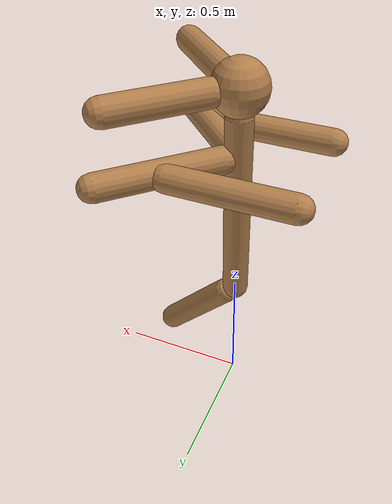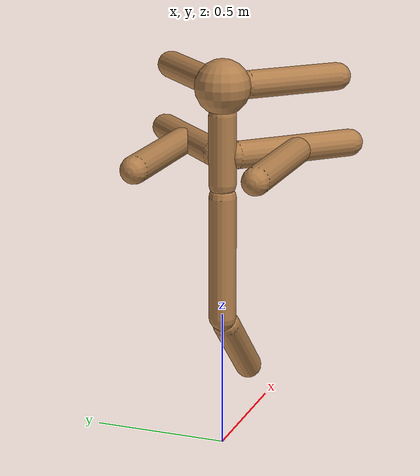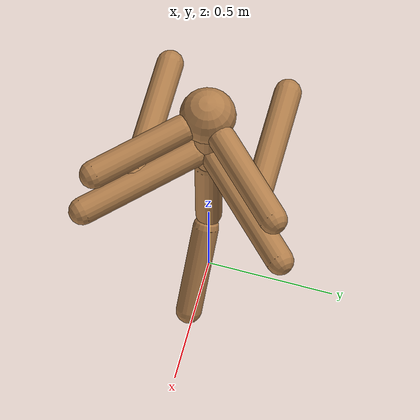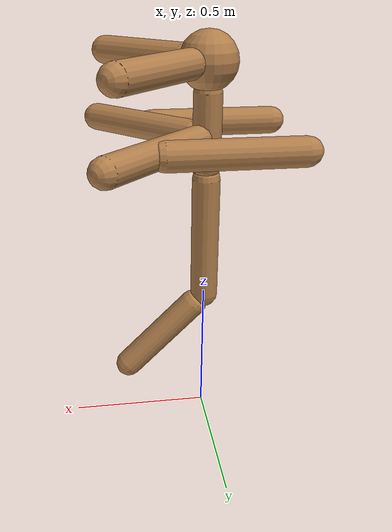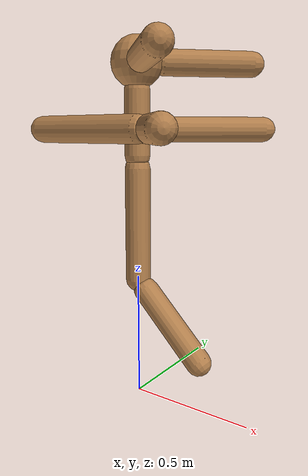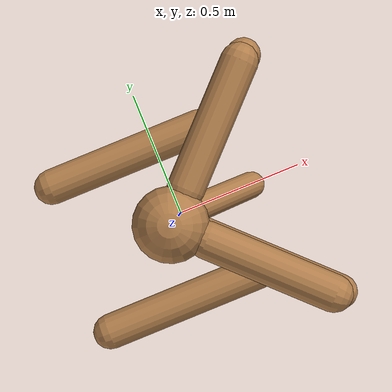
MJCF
<?xml version='1.0' encoding='UTF-8'?>
<!-- Universal Animal Template: unimal -->
<mujoco model="unimal">
  <compiler angle="degree"/>
  <size njmax="2000" nconmax="500"/>
  <option timestep=".005">
    <flag filterparent="disable"/>
  </option>
  <!-- Common defaults to make search space tractable -->
  <default>
    <!-- Define motor defaults -->
    <motor ctrlrange="-1 1" ctrllimited="true"/>
    <!-- Define joint defaults -->
    <default class="normal_joint">
      <joint type="hinge" damping="1" stiffness="1" armature="1" limited="true" range="-120 120" solimplimit="0 0.99 0.01"/>
    </default>
    <default class="walker_joint">
      <joint type="hinge" damping="0.2" stiffness="1" armature=".01" limited="true" range="-120 120" solimplimit="0 0.99 0.01"/>
    </default>
    <default class="stiff_joint">
      <joint type="hinge" damping="5" stiffness="10" armature=".01" limited="true" solimplimit="0 0.99 0.01"/>
    </default>
    <default class="free">
      <joint limited="false" damping="0" armature="0" stiffness="0"/>
    </default>
    <default class="growth_site">
      <site size="1e-6 1e-6 1e-6"/>
    </default>
    <default class="torso_growth_site">
      <site size="1e-6 1e-6 1e-6"/>
    </default>
    <default class="mirror_growth_site">
      <site size="1e-6 1e-6 1e-6"/>
    </default>
    <default class="btm_pos_site">
      <site size="1e-6 1e-6 1e-6"/>
    </default>
    <default class="box_face_site">
      <site size="1e-6 1e-6 1e-6"/>
    </default>
    <default class="imu_vel">
      <site type="box" size="0.05" rgba="1 0 0 0"/>
    </default>
    <default class="touch_site">
      <site group="3" rgba="0 0 1 .3"/>
    </default>
    <default class="food_site">
      <site material="food" size="0.15"/>
    </default>
    <!-- Define geom defaults -->
    <geom type="capsule" condim="3" friction="0.7 0.1 0.1" material="self"/>
  </default>
  <worldbody>
    <light diffuse="1 1 1" directional="true" exponent="1" pos="0 0 8" specular="0.1 0.1 0.1" dir="0 0 -1"/>
    <!-- Programatically generated xml goes here -->
    <body name="torso/0" pos="0 0 1.34">
      <joint name="root" type="free" class="free"/>
      <site name="root" class="imu_vel"/>
      <geom name="torso/0" type="sphere" size="0.1" condim="3" density="1000"/>
      <camera name="side" pos="0 -7 2" xyaxes="1 0 0 0 1 2" mode="trackcom"/>
      <site name="torso/0" class="growth_site" pos="0 0 0"/>
      <site name="torso/btm_pos/0" class="btm_pos_site" pos="0 0 -0.1"/>
      <site name="torso/touch/0" class="touch_site" size="0.11"/>
      <site name="torso/horizontal_y/0" class="torso_growth_site" pos="-0.1 0 0"/>
      <body name="limb/0" pos="0.0 0.0 -0.1">
        <joint name="limby/0" type="hinge" class="normal_joint" range="-45 45" pos="0.0 0.0 0.05" axis="0.0 1.0 0.0"/>
        <geom name="limb/0" type="capsule" fromto="0.0 0.0 0.0 0.0 0.0 -0.25" size="0.05" density="900"/>
        <site name="limb/mid/0" class="growth_site" pos="0.0 0.0 -0.15"/>
        <site name="limb/btm/0" class="growth_site" pos="0.0 0.0 -0.25"/>
        <site name="limb/btm_pos/0" class="btm_pos_site" pos="0.0 0.0 -0.25"/>
        <site name="limb/touch/0" class="touch_site" size="0.060000000000000005" fromto="0.0 0.0 0.0 0.0 0.0 -0.25" type="capsule"/>
        <body name="limb/1" pos="0.0 0.0 -0.3">
          <joint name="limbx/1" type="hinge" class="normal_joint" range="-30 0" pos="0.0 0.0 0.05" axis="1.0 0.0 0.0"/>
          <joint name="limby/1" type="hinge" class="normal_joint" range="0 90" pos="0.0 0.0 0.05" axis="0.0 1.0 0.0"/>
          <geom name="limb/1" type="capsule" fromto="0.0 0.0 0.0 0.0 0.0 -0.45" size="0.05" density="900"/>
          <site name="limb/mid/1" class="growth_site" pos="0.0 0.0 -0.25"/>
          <site name="limb/btm/1" class="growth_site" pos="0.0 0.0 -0.45"/>
          <site name="limb/btm_pos/1" class="btm_pos_site" pos="0.0 0.0 -0.45"/>
          <site name="limb/touch/1" class="touch_site" size="0.060000000000000005" fromto="0.0 0.0 0.0 0.0 0.0 -0.45" type="capsule"/>
          <body name="limb/6" pos="0.04 0.0 -0.49">
            <joint name="limbx/6" type="hinge" class="normal_joint" range="0 90" pos="-0.04 0.0 0.04" axis="0.7071 0.0 0.7071"/>
            <geom name="limb/6" type="capsule" fromto="0.0 0.0 0.0 0.25 0.0 -0.25" size="0.05" density="900"/>
            <site name="limb/mid/6" class="growth_site" pos="0.14 0.0 -0.14"/>
            <site name="limb/btm/6" class="growth_site" pos="0.25 0.0 -0.25"/>
            <site name="limb/btm_pos/6" class="btm_pos_site" pos="0.25 0.0 -0.25"/>
            <site name="limb/touch/6" class="touch_site" size="0.060000000000000005" fromto="0.0 0.0 0.0 0.25 0.0 -0.25" type="capsule"/>
          </body>
        </body>
        <body name="limb/13" pos="0.04 0.04 -0.15">
          <joint name="limbx/13" type="hinge" class="normal_joint" range="-60 0" pos="-0.04 -0.04 0.0" axis="0.5 -0.5 0.7071"/>
          <joint name="limby/13" type="hinge" class="normal_joint" range="-60 30" pos="-0.04 -0.04 0.0" axis="-0.5 0.5 0.7071"/>
          <geom name="limb/13" type="capsule" fromto="0.0 0.0 0.0 0.32 0.32 0.0" size="0.05" density="900"/>
          <site name="limb/mid/13" class="mirror_growth_site" pos="0.18 0.18 0.0"/>
          <site name="limb/btm/13" class="mirror_growth_site" pos="0.32 0.32 0.0"/>
          <site name="limb/btm_pos/13" class="btm_pos_site" pos="0.35 0.35 0.0"/>
          <site name="limb/touch/13" class="touch_site" size="0.060000000000000005" fromto="0.0 0.0 0.0 0.32 0.32 0.0" type="capsule"/>
          <body name="limb/15" pos="0.13 0.18 0.0">
            <joint name="limbx/15" type="hinge" class="normal_joint" range="-60 30" pos="0.05 0.0 0.0" axis="0.0 0.0 -1.0"/>
            <joint name="limby/15" type="hinge" class="normal_joint" range="-60 30" pos="0.05 0.0 0.0" axis="0.0 1.0 0.0"/>
            <geom name="limb/15" type="capsule" fromto="0.0 0.0 0.0 -0.45 0.0 0.0" size="0.05" density="900"/>
            <site name="limb/mid/15" class="mirror_growth_site" pos="-0.25 0.0 0.0"/>
            <site name="limb/btm/15" class="mirror_growth_site" pos="-0.45 0.0 0.0"/>
            <site name="limb/btm_pos/15" class="btm_pos_site" pos="-0.5 0.0 0.0"/>
            <site name="limb/touch/15" class="touch_site" size="0.060000000000000005" fromto="0.0 0.0 0.0 -0.45 0.0 0.0" type="capsule"/>
          </body>
        </body>
        <body name="limb/14" pos="0.04 -0.04 -0.15">
          <joint name="limbx/14" type="hinge" class="normal_joint" range="-60 0" pos="-0.04 0.04 0.0" axis="0.5 0.5 0.7071"/>
          <joint name="limby/14" type="hinge" class="normal_joint" range="-60 30" pos="-0.04 0.04 0.0" axis="0.5 0.5 -0.7071"/>
          <geom name="limb/14" type="capsule" fromto="0.0 0.0 0.0 0.32 -0.32 0.0" size="0.05" density="900"/>
          <site name="limb/mid/14" class="mirror_growth_site" pos="0.18 -0.18 0.0"/>
          <site name="limb/btm/14" class="mirror_growth_site" pos="0.32 -0.32 0.0"/>
          <site name="limb/btm_pos/14" class="btm_pos_site" pos="0.35 -0.35 0.0"/>
          <site name="limb/touch/14" class="touch_site" size="0.060000000000000005" fromto="0.0 0.0 0.0 0.32 -0.32 0.0" type="capsule"/>
          <body name="limb/16" pos="0.13 -0.18 0.0">
            <joint name="limbx/16" type="hinge" class="normal_joint" range="-60 30" pos="0.05 0.0 0.0" axis="0.0 0.0 -1.0"/>
            <joint name="limby/16" type="hinge" class="normal_joint" range="-60 30" pos="0.05 0.0 0.0" axis="0.0 1.0 0.0"/>
            <geom name="limb/16" type="capsule" fromto="0.0 0.0 0.0 -0.45 0.0 0.0" size="0.05" density="900"/>
            <site name="limb/mid/16" class="mirror_growth_site" pos="-0.25 0.0 0.0"/>
            <site name="limb/btm/16" class="mirror_growth_site" pos="-0.45 0.0 0.0"/>
            <site name="limb/btm_pos/16" class="btm_pos_site" pos="-0.5 0.0 0.0"/>
            <site name="limb/touch/16" class="touch_site" size="0.060000000000000005" fromto="0.0 0.0 0.0 -0.45 0.0 0.0" type="capsule"/>
          </body>
        </body>
      </body>
      <body name="limb/11" pos="0.07 0.07 0.0">
        <joint name="limbx/11" type="hinge" class="normal_joint" range="0 90" pos="-0.04 -0.04 0.0" axis="0.5 -0.5 0.7071"/>
        <geom name="limb/11" type="capsule" fromto="0.0 0.0 0.0 0.25 0.25 0.0" size="0.05" density="900"/>
        <site name="limb/mid/11" class="mirror_growth_site" pos="0.14 0.14 0.0"/>
        <site name="limb/btm/11" class="mirror_growth_site" pos="0.25 0.25 0.0"/>
        <site name="limb/btm_pos/11" class="btm_pos_site" pos="0.25 0.25 0.0"/>
        <site name="limb/touch/11" class="touch_site" size="0.060000000000000005" fromto="0.0 0.0 0.0 0.25 0.25 0.0" type="capsule"/>
      </body>
      <body name="limb/12" pos="0.07 -0.07 0.0">
        <joint name="limbx/12" type="hinge" class="normal_joint" range="0 90" pos="-0.04 0.04 0.0" axis="0.5 0.5 0.7071"/>
        <geom name="limb/12" type="capsule" fromto="0.0 0.0 0.0 0.25 -0.25 0.0" size="0.05" density="900"/>
        <site name="limb/mid/12" class="mirror_growth_site" pos="0.14 -0.14 0.0"/>
        <site name="limb/btm/12" class="mirror_growth_site" pos="0.25 -0.25 0.0"/>
        <site name="limb/btm_pos/12" class="btm_pos_site" pos="0.25 -0.25 0.0"/>
        <site name="limb/touch/12" class="touch_site" size="0.060000000000000005" fromto="0.0 0.0 0.0 0.25 -0.25 0.0" type="capsule"/>
      </body>
    </body>
  </worldbody>
  <actuator>
    <motor joint="limby/0" gear="300" name="limby/0"/>
    <motor joint="limbx/1" gear="150" name="limbx/1"/>
    <motor joint="limby/1" gear="250" name="limby/1"/>
    <motor joint="limbx/6" gear="200" name="limbx/6"/>
    <motor joint="limbx/13" gear="200" name="limbx/13"/>
    <motor joint="limby/13" gear="250" name="limby/13"/>
    <motor joint="limbx/15" gear="250" name="limbx/15"/>
    <motor joint="limby/15" gear="200" name="limby/15"/>
    <motor joint="limbx/14" gear="200" name="limbx/14"/>
    <motor joint="limby/14" gear="250" name="limby/14"/>
    <motor joint="limbx/16" gear="250" name="limbx/16"/>
    <motor joint="limby/16" gear="200" name="limby/16"/>
    <motor joint="limbx/11" gear="200" name="limbx/11"/>
    <motor joint="limbx/12" gear="200" name="limbx/12"/>
  </actuator>
  <sensor>
    <accelerometer name="torso_accel" site="root"/>
    <gyro name="torso_gyro" site="root"/>
    <velocimeter name="torso_vel" site="root"/>
    <subtreeangmom name="unimal_am" body="torso/0"/>
    <touch name="torso/0" site="torso/touch/0"/>
    <touch name="limb/0" site="limb/touch/0"/>
    <touch name="limb/1" site="limb/touch/1"/>
    <touch name="limb/6" site="limb/touch/6"/>
    <touch name="limb/13" site="limb/touch/13"/>
    <touch name="limb/15" site="limb/touch/15"/>
    <touch name="limb/14" site="limb/touch/14"/>
    <touch name="limb/16" site="limb/touch/16"/>
    <touch name="limb/11" site="limb/touch/11"/>
    <touch name="limb/12" site="limb/touch/12"/>
  </sensor>
  <!-- Add hfield assets -->
  <asset/>
  <!-- List of contacts to exclude -->
  <contact>
    <exclude name="limb/13:limb/14" body1="limb/13" body2="limb/14"/>
  </contact>
  <!-- Define material, texture etc -->
  <asset>
    <material name="grid" texture="grid" texrepeat="1 1" texuniform="true" reflectance="0.1"/>
    <material name="hfield" texture="hfield" texrepeat="1 1" texuniform="true" reflectance="0.1"/>
    <material name="wall" texture="wall" texrepeat="1 1" texuniform="true" reflectance=".5"/>
    <material name="platform" texture="platform" texrepeat="1 1" texuniform="true" reflectance=".5"/>
    <material name="boundary" texture="boundary" texrepeat="1 1" texuniform="true" reflectance=".5"/>
    <material name="jump" texture="jump" texrepeat="1 1" texuniform="true" reflectance=".5"/>
    <material name="goal" rgba="1 0 0 1"/>
    <material name="food" rgba="0 0 1 1" emission="1"/>
    <material name="init_position" rgba="0 1 0 0.7"/>
    <material name="self" rgba=".7 .5 .3 1"/>
    <material name="self_invisible" rgba=".7 .5 .3 0"/>
    <material name="self_default" rgba=".7 .5 .3 1"/>
    <material name="self_highlight" rgba="0 .5 .3 1"/>
    <material name="effector" rgba=".7 .4 .2 1"/>
    <material name="effector_default" rgba=".7 .4 .2 1"/>
    <material name="effector_highlight" rgba="0 .5 .3 1"/>
    <material name="decoration" rgba=".3 .5 .7 1"/>
    <material name="eye" rgba="0 .2 1 1"/>
    <material name="target" rgba=".6 .3 .3 1"/>
    <material name="target_default" rgba=".6 .3 .3 1"/>
    <material name="target_highlight" rgba=".6 .3 .3 .4"/>
    <material name="site" rgba=".5 .5 .5 .3"/>
    <material name="ball" texture="ball"/>
  </asset>
  <asset>
    <texture name="grid" type="2d" builtin="checker" rgb1="0.4 0.4 0.4" rgb2="0.4 0.4 0.4" width="300" height="300" mark="edge" markrgb="0.2 0.2 0.2"/>
    <texture name="hfield" type="2d" builtin="checker" rgb1="0.4 0.4 0.4" rgb2="0.4 0.4 0.4" width="300" height="300" mark="edge" markrgb="0.2 0.2 0.2"/>
    <texture name="wall" type="2d" builtin="flat" rgb1="0.9 0.7 0" rgb2="0.9 0.7 0" width="300" height="300"/>
    <texture name="platform" type="2d" builtin="flat" rgb1="0.3 0 0.8" rgb2="0.3 0 0.8" width="300" height="300"/>
    <texture name="boundary" type="2d" builtin="flat" rgb1="0.3 0.3 0.3" rgb2="0.3 0.3 0.3" width="300" height="300"/>
    <texture name="jump" type="2d" builtin="flat" rgb1="0.3 0.3 0.3" rgb2="0.3 0.3 0.3" width="300" height="300"/>
    <texture name="skybox" type="skybox" builtin="gradient" rgb1="1 1 1" rgb2="0.6 0.6 0.6" width="800" height="800"/>
    <texture name="ball" builtin="checker" mark="cross" width="151" height="151" rgb1="0.1 0.1 0.1" rgb2="0.9 0.9 0.9" markrgb="1 1 1"/>
  </asset>
  <visual>
    <headlight ambient="0.6 0.6 0.6" diffuse="0.3 0.3 0.3" specular="0 0 0"/>
    <map znear=".01" shadowclip="0.5"/>
    <quality shadowsize="16384"/>
  </visual>
</mujoco>
